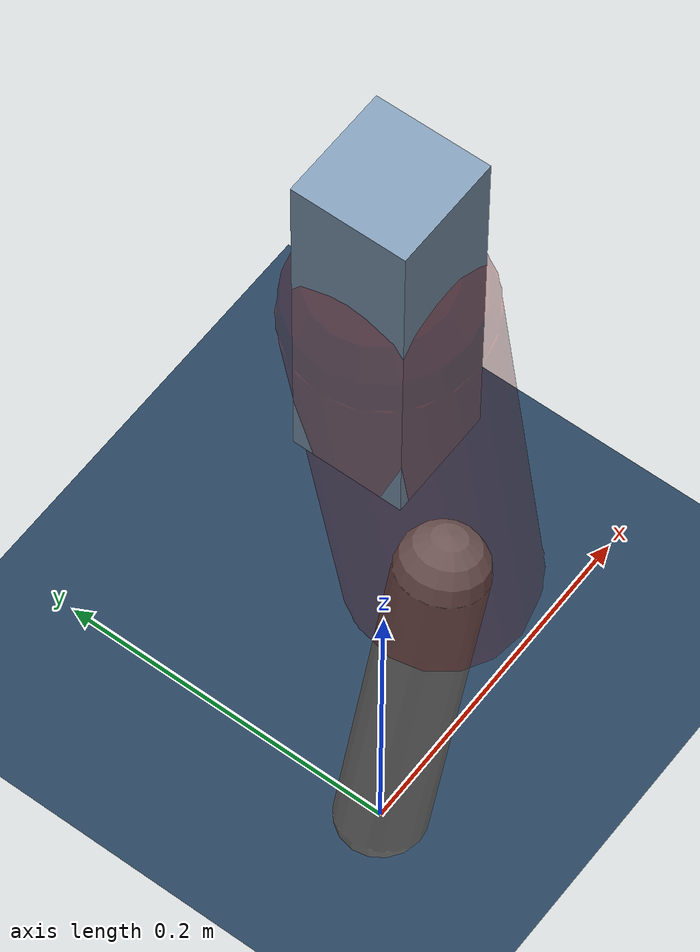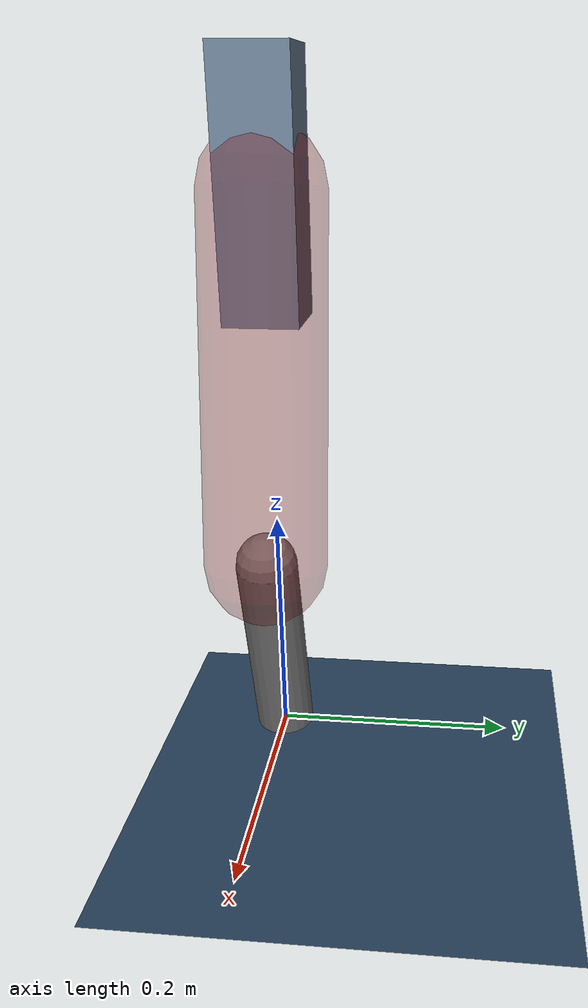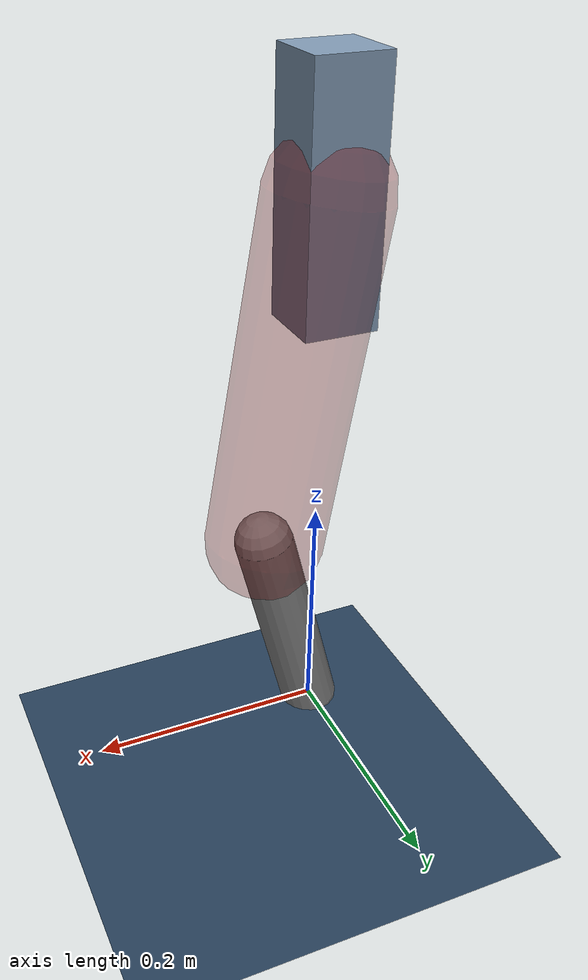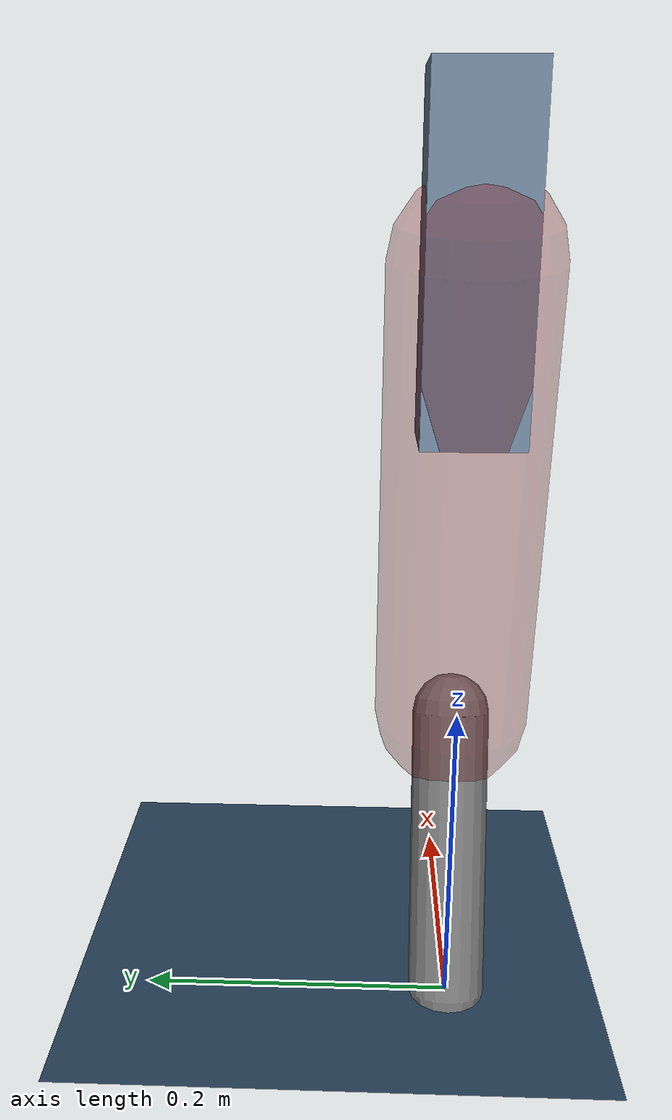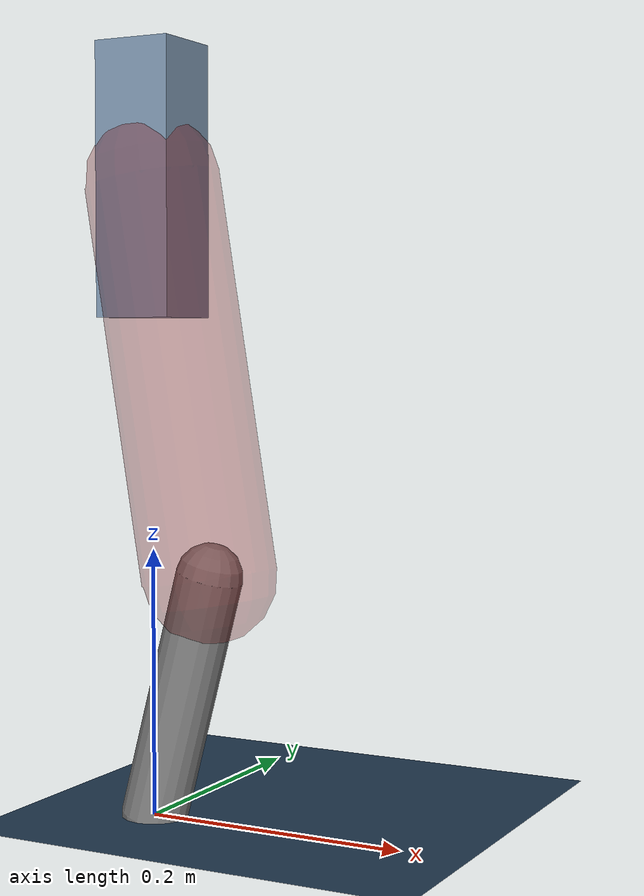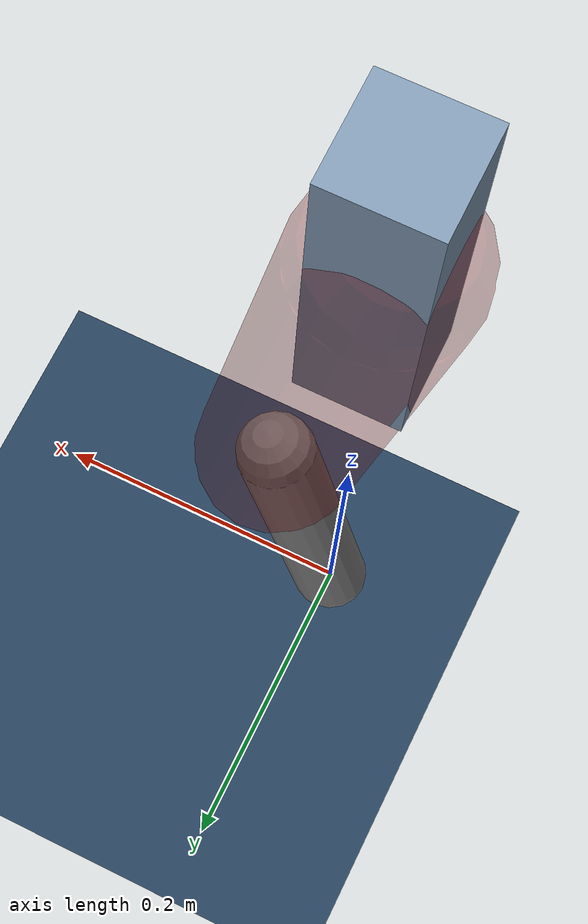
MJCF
<mujoco model="Hopper2D">
	<compiler inertiafromgeom="true" angle="radian" />
	<option timestep="0.001" integrator="implicit" cone="elliptic" solver="Newton" tolerance="1e-10" />

	<default>
		<geom contype="1" conaffinity="1" condim="3" friction="2 0.005 0.0001" solref="0.005 1" />
		<joint limited="true" damping="0.1" />
	</default>

	<asset>
		<texture name="skybox" type="skybox" builtin="gradient" rgb1=".4 .6 .8" rgb2="0 0 0" width="800" height="800" />
		<texture name="grid" type="2d" builtin="checker" rgb1=".1 .2 .3" rgb2=".2 .3 .4" width="300" height="300" mark="edge" markrgb=".2 .3 .4" />
		<material name="ground" texture="grid" texrepeat="1 1" texuniform="true" reflectance="0.1" />
		<material name="leg" rgba="0.5 0.6 0.7 1" />
	</asset>

	<worldbody>

		<geom name="floor" type="plane" size="5 5 0.25" material="ground" />

		<light directional="false" diffuse="0.8 0.8 0.8" specular="0.3 0.3 0.3" pos="0 0 2" dir="0 0 -1" />
		<light mode="targetbodycom" target="base" directional="false" diffuse="0.8 0.8 0.8" specular="0.3 0.3 0.3" pos="0 0 2" dir="0 0 -1" />

		<camera name="fixed" pos="0 -2 1" xyaxes="1 0 0 0 0 1" />
		<camera name="tracking" mode="trackcom" pos="0 -3 1" />

		<body name="root" pos="0 0 0.4717741348238412">
			<joint name="slide_x" type="slide" axis="1 0 0" range="-100 100" />
			<joint name="slide_z" type="slide" axis="0 0 1" range="0 10" />

			<body name="base" pos="0 0 0">
				<geom name="torso" type="box" size="0.03 0.03 0.1" mass="2.3179999999999996" material="leg" />

				<body name="link1" pos="0 0 0" euler="0 1.4075332454468683 0">
					<joint type="hinge" axis="0 -1 0" pos="0 0 0" name="hinge1" limited="true" range="-3.14 3.14" stiffness="0" damping="0.1" />
					<geom name="thigh" type="capsule" fromto="0 0 0 0.2929743955593278 0 0" size="0.05" rgba="0.5 0 0 0.3" mass="0.9698308680101851" />

					<body name="link2" pos="0.2929743955593278 0 0" euler="0 0.41824023623727813 0">
						<joint type="hinge" axis="0 -1 0" pos="0 0 0" name="hinge2" limited="true" range="-3.14 3.14" stiffness="0" damping="0.1" />
						<geom name="shank" type="capsule" fromto="0 0 0 0.18879973926451338 0 0" size="0.025" mass="0.39141976533806205" />

					</body>
				</body>
			</body>
		</body>
	</worldbody>

	<actuator>
		<motor name="torque1" joint="hinge1" ctrlrange="-66.13947690319567 66.13947690319567" ctrllimited="true" gear="1" />
		<motor name="torque2" joint="hinge2" ctrlrange="-98.95457398315929 98.95457398315929" ctrllimited="true" gear="1" />
	</actuator>
</mujoco>
